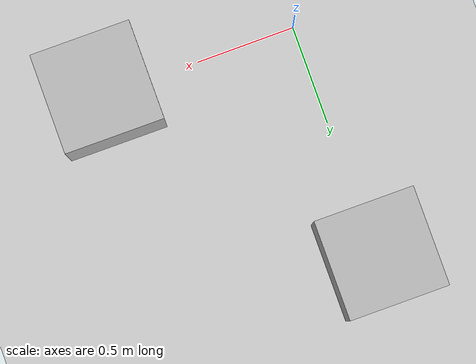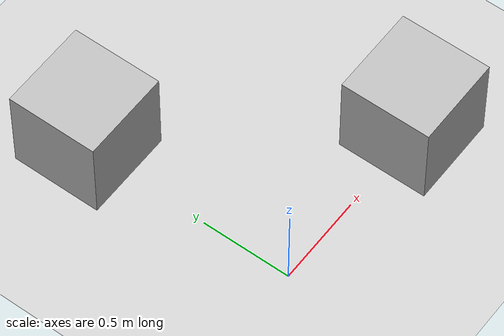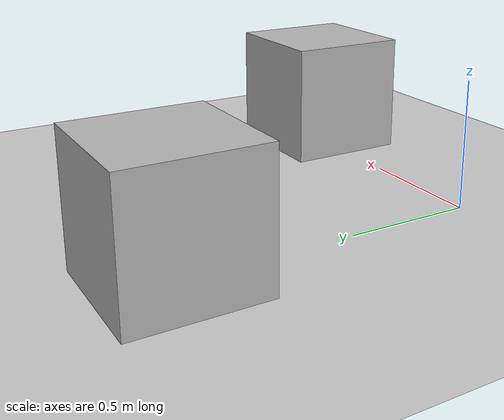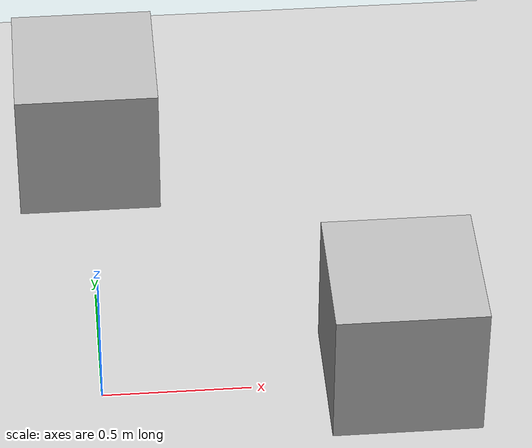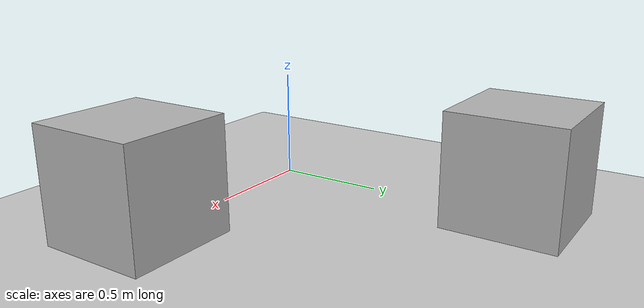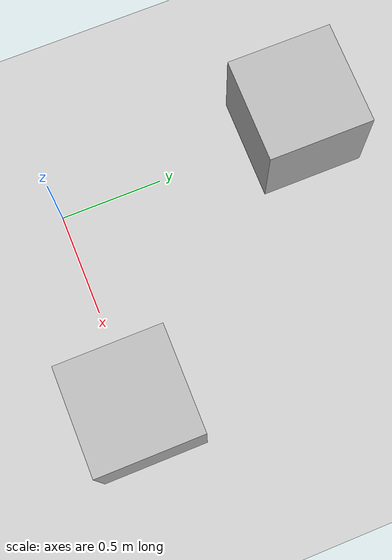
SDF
<?xml version="1.0" ?>
<sdf version="1.6">
  <world name="flat_world">
    <!-- Physics (stable, 1 kHz sim rate) -->
    <physics type="ode">
      <max_step_size>0.001</max_step_size>
      <real_time_update_rate>1000</real_time_update_rate>
    </physics>

    <!-- Gravity -->
    <gravity>0 0 -9.81</gravity>

    <!-- Ground + Sun only (no extra robots/models) -->
    <include>
      <uri>model://ground_plane</uri>
    </include>
    <include>
      <uri>model://sun</uri>
    </include>

    <!-- Obstacles (static so they don't fall) -->
    <model name="box1">
      <static>true</static>
      <!-- center at z = half the box height (0.25 for a 0.5m cube) -->
      <pose>1.0 0.0 0.25 0 0 0</pose>
      <link name="link">
        <collision name="collision">
          <geometry>
            <box><size>0.5 0.5 0.5</size></box>
          </geometry>
        </collision>
        <visual name="visual">
          <geometry>
            <box><size>0.5 0.5 0.5</size></box>
          </geometry>
        </visual>
      </link>
    </model>

    <model name="box2">
      <static>true</static>
      <pose>0.0 1.2 0.25 0 0 0</pose>
      <link name="link">
        <collision name="collision">
          <geometry>
            <box><size>0.5 0.5 0.5</size></box>
          </geometry>
        </collision>
        <visual name="visual">
          <geometry>
            <box><size>0.5 0.5 0.5</size></box>
          </geometry>
        </visual>
      </link>
    </model>

    <!-- Optional: set initial GUI camera -->
    <gui fullscreen="0">
      <camera name="user_camera">
        <pose>2 -2 2 0.3 0.6 2.35</pose>
      </camera>
    </gui>
  </world>
</sdf>
